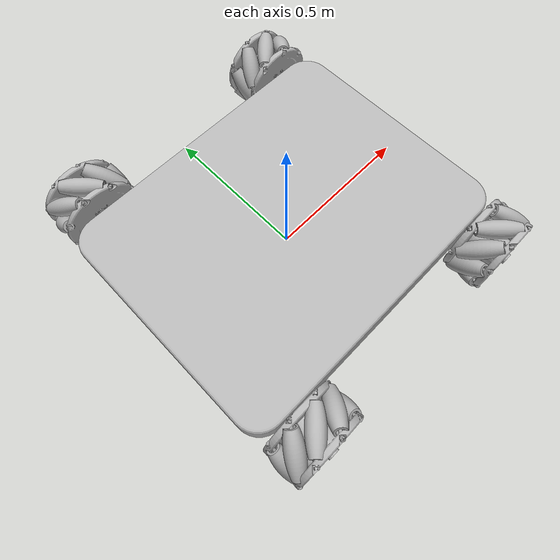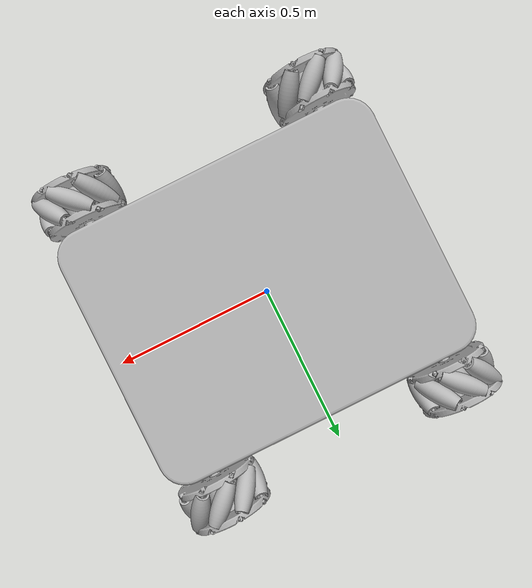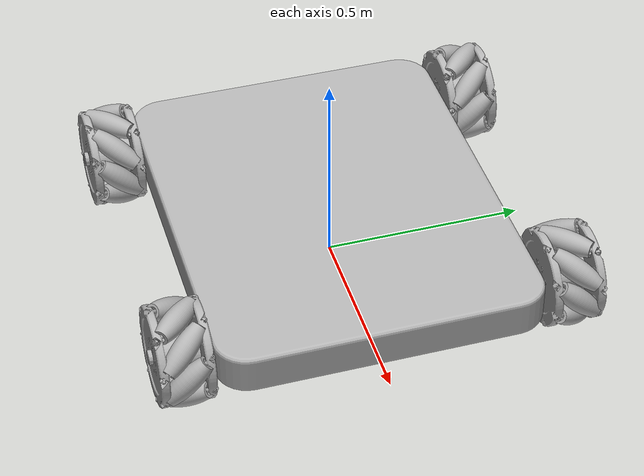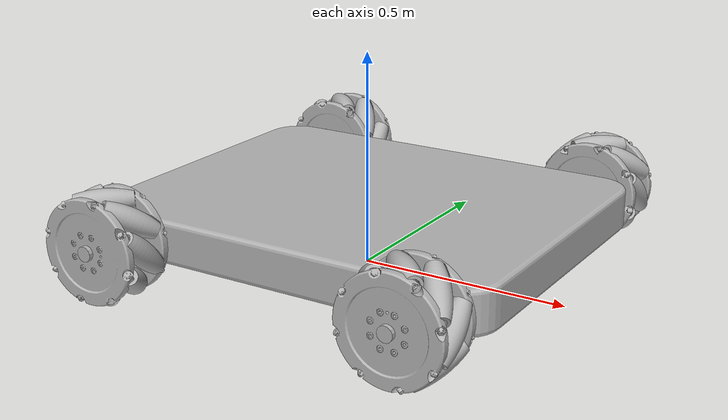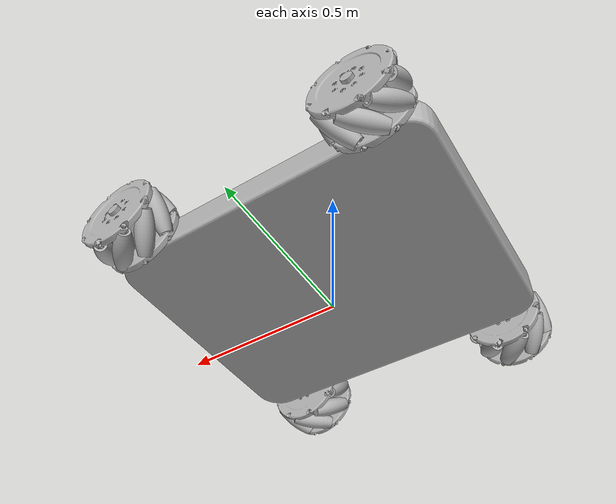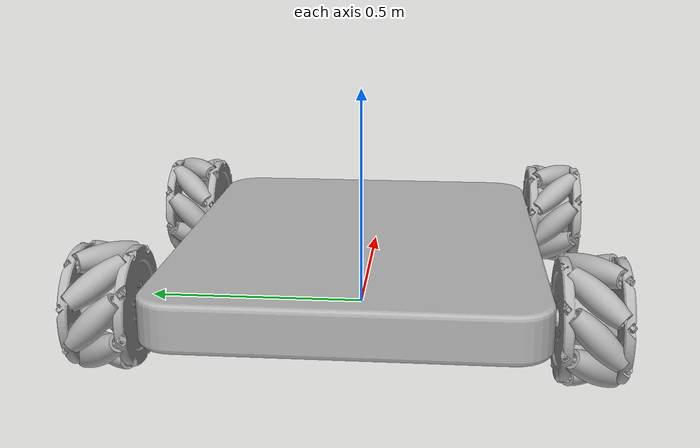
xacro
<?xml version="1.0" ?>
<robot name="mecanum_robot" xmlns:xacro="http://www.ros.org/wiki/xacro">

<xacro:include filename="$(find mecanum_robot_description)/urdf/materials.xacro" />
<xacro:include filename="$(find mecanum_robot_description)/urdf/mecanum_robot.trans" />
<xacro:include filename="$(find mecanum_robot_description)/urdf/mecanum_robot.gazebo" />
<link name="base_link">
  <inertial>
    <origin xyz="1.1663534961074897e-16 1.1663534961074897e-16 0.12" rpy="0 0 0"/>
    <mass value="626.8153038620243"/>
    <inertia ixx="34.21205" iyy="52.267949" izz="85.445173" ixy="0.0" iyz="0.0" ixz="0.0"/>
  </inertial>
  <visual>
    <origin xyz="0 0 0" rpy="0 0 0"/>
    <geometry>
      <mesh filename="file://$(find mecanum_robot_description)/meshes/base_link.stl" scale="0.001 0.001 0.001"/>
    </geometry>
    <material name="silver"/>
  </visual>
  <collision>
    <origin xyz="0 0 0" rpy="0 0 0"/>
    <geometry>
      <mesh filename="file://$(find mecanum_robot_description)/meshes/base_link.stl" scale="0.001 0.001 0.001"/>
    </geometry>
  </collision>
</link>

<link name="rr_wheel_body_1">
  <inertial>
    <origin xyz="1.1312574815625087e-05 0.0001733408960148397 2.351323560800811e-06" rpy="0 0 0"/>
    <mass value="15.884472667137045"/>
    <inertia ixx="0.080049" iyy="0.090199" izz="0.079944" ixy="4e-06" iyz="2e-06" ixz="-4e-06"/>
  </inertial>
  <visual>
    <origin xyz="0.373 0.471 -0.12" rpy="0 0 0"/>
    <geometry>
      <mesh filename="file://$(find mecanum_robot_description)/meshes/rr_wheel_body_1.stl" scale="0.001 0.001 0.001"/>
    </geometry>
    <material name="silver"/>
  </visual>
  <collision>
    <origin xyz="0.373 0.471 -0.12" rpy="0 0 0"/>
    <geometry>
      <mesh filename="file://$(find mecanum_robot_description)/meshes/rr_wheel_body_1.stl" scale="0.001 0.001 0.001"/>
    </geometry>
  </collision>
</link>

<link name="fr_wheel_body_1">
  <inertial>
    <origin xyz="2.3519307399966216e-06 0.00017333973584671147 1.1313181994626609e-05" rpy="0 0 0"/>
    <mass value="15.884472667137013"/>
    <inertia ixx="0.079944" iyy="0.090199" izz="0.080049" ixy="2e-06" iyz="4e-06" ixz="-4e-06"/>
  </inertial>
  <visual>
    <origin xyz="-0.373 0.471 -0.12" rpy="0 0 0"/>
    <geometry>
      <mesh filename="file://$(find mecanum_robot_description)/meshes/fr_wheel_body_1.stl" scale="0.001 0.001 0.001"/>
    </geometry>
    <material name="silver"/>
  </visual>
  <collision>
    <origin xyz="-0.373 0.471 -0.12" rpy="0 0 0"/>
    <geometry>
      <mesh filename="file://$(find mecanum_robot_description)/meshes/fr_wheel_body_1.stl" scale="0.001 0.001 0.001"/>
    </geometry>
  </collision>
</link>

<link name="fl_wheel_body_1">
  <inertial>
    <origin xyz="1.1313493589404366e-05 -0.00017333973584715556 -2.3513235607730554e-06" rpy="0 0 0"/>
    <mass value="15.884472667137045"/>
    <inertia ixx="0.080049" iyy="0.090199" izz="0.079944" ixy="-4e-06" iyz="2e-06" ixz="4e-06"/>
  </inertial>
  <visual>
    <origin xyz="-0.373 -0.471 -0.12" rpy="0 0 0"/>
    <geometry>
      <mesh filename="file://$(find mecanum_robot_description)/meshes/fl_wheel_body_1.stl" scale="0.001 0.001 0.001"/>
    </geometry>
    <material name="silver"/>
  </visual>
  <collision>
    <origin xyz="-0.373 -0.471 -0.12" rpy="0 0 0"/>
    <geometry>
      <mesh filename="file://$(find mecanum_robot_description)/meshes/fl_wheel_body_1.stl" scale="0.001 0.001 0.001"/>
    </geometry>
  </collision>
</link>

<link name="bl_wheel_body_1">
  <inertial>
    <origin xyz="2.3510119655512085e-06 0.00017334089601545033 1.1313181994640487e-05" rpy="0 0 0"/>
    <mass value="5.484554299514419"/>
    <inertia ixx="0.027603" iyy="0.031144" izz="0.027639" ixy="1e-06" iyz="1e-06" ixz="-1e-06"/>
  </inertial>
  <visual>
    <origin xyz="0.373 -0.471 -0.12" rpy="0 0 0"/>
    <geometry>
      <mesh filename="file://$(find mecanum_robot_description)/meshes/bl_wheel_body_1.stl" scale="0.001 0.001 0.001"/>
    </geometry>
    <material name="silver"/>
  </visual>
  <collision>
    <origin xyz="0.373 -0.471 -0.12" rpy="0 0 0"/>
    <geometry>
      <mesh filename="file://$(find mecanum_robot_description)/meshes/bl_wheel_body_1.stl" scale="0.001 0.001 0.001"/>
    </geometry>
  </collision>
</link>

<link name="roller_2">
  <inertial>
    <origin xyz="-4.2866253802120724e-07 -2.0539125955565396e-15 -4.2866253369133744e-07" rpy="0 0 0"/>
    <mass value="0.20683112740471188"/>
    <inertia ixx="0.000203" iyy="0.000161" izz="0.000203" ixy="6e-05" iyz="-6e-05" ixz="4.2e-05"/>
  </inertial>
  <visual>
    <origin xyz="-0.443004 0.471 -0.190004" rpy="0 0 0"/>
    <geometry>
      <mesh filename="file://$(find mecanum_robot_description)/meshes/roller_2.stl" scale="0.001 0.001 0.001"/>
    </geometry>
    <material name="silver"/>
  </visual>
  <collision>
    <origin xyz="-0.443004 0.471 -0.190004" rpy="0 0 0"/>
    <geometry>
      <mesh filename="file://$(find mecanum_robot_description)/meshes/roller_2.stl" scale="0.001 0.001 0.001"/>
    </geometry>
  </collision>
</link>

<link name="roller_1">
  <inertial>
    <origin xyz="-1.572875303335053e-07 1.5728752089660958e-07 -8.326672684688674e-17" rpy="0 0 0"/>
    <mass value="0.20683112740471188"/>
    <inertia ixx="0.000161" iyy="0.000161" izz="0.000245" ixy="8.4e-05" iyz="0.0" ixz="-0.0"/>
  </inertial>
  <visual>
    <origin xyz="-0.373283 0.471283 -0.219" rpy="0 0 0"/>
    <geometry>
      <mesh filename="file://$(find mecanum_robot_description)/meshes/roller_1.stl" scale="0.001 0.001 0.001"/>
    </geometry>
    <material name="silver"/>
  </visual>
  <collision>
    <origin xyz="-0.373283 0.471283 -0.219" rpy="0 0 0"/>
    <geometry>
      <mesh filename="file://$(find mecanum_robot_description)/meshes/roller_1.stl" scale="0.001 0.001 0.001"/>
    </geometry>
  </collision>
</link>

<link name="roller_8">
  <inertial>
    <origin xyz="4.28662526918977e-07 -4.107825191113079e-15 -4.286625290561563e-07" rpy="0 0 0"/>
    <mass value="0.20683112740471188"/>
    <inertia ixx="0.000203" iyy="0.000161" izz="0.000203" ixy="6e-05" iyz="6e-05" ixz="-4.2e-05"/>
  </inertial>
  <visual>
    <origin xyz="-0.302996 0.471 -0.190004" rpy="0 0 0"/>
    <geometry>
      <mesh filename="file://$(find mecanum_robot_description)/meshes/roller_8.stl" scale="0.001 0.001 0.001"/>
    </geometry>
    <material name="silver"/>
  </visual>
  <collision>
    <origin xyz="-0.302996 0.471 -0.190004" rpy="0 0 0"/>
    <geometry>
      <mesh filename="file://$(find mecanum_robot_description)/meshes/roller_8.stl" scale="0.001 0.001 0.001"/>
    </geometry>
  </collision>
</link>

<link name="roller_7">
  <inertial>
    <origin xyz="6.38378239159465e-15 -3.1086244689504383e-15 2.914335439641036e-15" rpy="0 0 0"/>
    <mass value="0.20683112740471188"/>
    <inertia ixx="0.000245" iyy="0.000161" izz="0.000161" ixy="0.0" iyz="8.4e-05" ixz="-0.0"/>
  </inertial>
  <visual>
    <origin xyz="-0.274 0.471 -0.12" rpy="0 0 0"/>
    <geometry>
      <mesh filename="file://$(find mecanum_robot_description)/meshes/roller_7.stl" scale="0.001 0.001 0.001"/>
    </geometry>
    <material name="silver"/>
  </visual>
  <collision>
    <origin xyz="-0.274 0.471 -0.12" rpy="0 0 0"/>
    <geometry>
      <mesh filename="file://$(find mecanum_robot_description)/meshes/roller_7.stl" scale="0.001 0.001 0.001"/>
    </geometry>
  </collision>
</link>

<link name="roller_6">
  <inertial>
    <origin xyz="4.286625237548414e-07 1.1657341758564144e-15 4.2866253131823573e-07" rpy="0 0 0"/>
    <mass value="0.20683112740471188"/>
    <inertia ixx="0.000203" iyy="0.000161" izz="0.000203" ixy="-6e-05" iyz="6e-05" ixz="4.2e-05"/>
  </inertial>
  <visual>
    <origin xyz="-0.302996 0.471 -0.049996" rpy="0 0 0"/>
    <geometry>
      <mesh filename="file://$(find mecanum_robot_description)/meshes/roller_6.stl" scale="0.001 0.001 0.001"/>
    </geometry>
    <material name="silver"/>
  </visual>
  <collision>
    <origin xyz="-0.302996 0.471 -0.049996" rpy="0 0 0"/>
    <geometry>
      <mesh filename="file://$(find mecanum_robot_description)/meshes/roller_6.stl" scale="0.001 0.001 0.001"/>
    </geometry>
  </collision>
</link>

<link name="roller_5">
  <inertial>
    <origin xyz="-6.2727600891321345e-15 4.274358644806853e-15 -2.0122792321330962e-16" rpy="0 0 0"/>
    <mass value="0.20683112740471188"/>
    <inertia ixx="0.000161" iyy="0.000161" izz="0.000245" ixy="-8.4e-05" iyz="-0.0" ixz="0.0"/>
  </inertial>
  <visual>
    <origin xyz="-0.373 0.471 -0.021" rpy="0 0 0"/>
    <geometry>
      <mesh filename="file://$(find mecanum_robot_description)/meshes/roller_5.stl" scale="0.001 0.001 0.001"/>
    </geometry>
    <material name="silver"/>
  </visual>
  <collision>
    <origin xyz="-0.373 0.471 -0.021" rpy="0 0 0"/>
    <geometry>
      <mesh filename="file://$(find mecanum_robot_description)/meshes/roller_5.stl" scale="0.001 0.001 0.001"/>
    </geometry>
  </collision>
</link>

<link name="roller_4">
  <inertial>
    <origin xyz="-4.2866253802120724e-07 3.7192471324942744e-15 4.2866253346235395e-07" rpy="0 0 0"/>
    <mass value="0.20683112740471188"/>
    <inertia ixx="0.000203" iyy="0.000161" izz="0.000203" ixy="-6e-05" iyz="-6e-05" ixz="-4.2e-05"/>
  </inertial>
  <visual>
    <origin xyz="-0.443004 0.471 -0.049996" rpy="0 0 0"/>
    <geometry>
      <mesh filename="file://$(find mecanum_robot_description)/meshes/roller_4.stl" scale="0.001 0.001 0.001"/>
    </geometry>
    <material name="silver"/>
  </visual>
  <collision>
    <origin xyz="-0.443004 0.471 -0.049996" rpy="0 0 0"/>
    <geometry>
      <mesh filename="file://$(find mecanum_robot_description)/meshes/roller_4.stl" scale="0.001 0.001 0.001"/>
    </geometry>
  </collision>
</link>

<link name="roller_3">
  <inertial>
    <origin xyz="6.439293542825908e-15 3.3306690738754696e-16 -2.7755575615628914e-16" rpy="0 0 0"/>
    <mass value="0.20683112740471188"/>
    <inertia ixx="0.000245" iyy="0.000161" izz="0.000161" ixy="0.0" iyz="-8.4e-05" ixz="-0.0"/>
  </inertial>
  <visual>
    <origin xyz="-0.472 0.471 -0.12" rpy="0 0 0"/>
    <geometry>
      <mesh filename="file://$(find mecanum_robot_description)/meshes/roller_3.stl" scale="0.001 0.001 0.001"/>
    </geometry>
    <material name="silver"/>
  </visual>
  <collision>
    <origin xyz="-0.472 0.471 -0.12" rpy="0 0 0"/>
    <geometry>
      <mesh filename="file://$(find mecanum_robot_description)/meshes/roller_3.stl" scale="0.001 0.001 0.001"/>
    </geometry>
  </collision>
</link>

<link name="roller_30">
  <inertial>
    <origin xyz="-4.2866253685547306e-07 4.107825191113079e-15 -4.2866253516238295e-07" rpy="0 0 0"/>
    <mass value="0.20683112740471188"/>
    <inertia ixx="0.000203" iyy="0.000161" izz="0.000203" ixy="-6e-05" iyz="6e-05" ixz="4.2e-05"/>
  </inertial>
  <visual>
    <origin xyz="-0.443004 -0.471 -0.190004" rpy="0 0 0"/>
    <geometry>
      <mesh filename="file://$(find mecanum_robot_description)/meshes/roller_30.stl" scale="0.001 0.001 0.001"/>
    </geometry>
    <material name="silver"/>
  </visual>
  <collision>
    <origin xyz="-0.443004 -0.471 -0.190004" rpy="0 0 0"/>
    <geometry>
      <mesh filename="file://$(find mecanum_robot_description)/meshes/roller_30.stl" scale="0.001 0.001 0.001"/>
    </geometry>
  </collision>
</link>

<link name="roller_29">
  <inertial>
    <origin xyz="7.105427357601002e-15 -1.5728752583710204e-07 1.572875249766792e-07" rpy="0 0 0"/>
    <mass value="0.20683112740471188"/>
    <inertia ixx="0.000245" iyy="0.000161" izz="0.000161" ixy="-0.0" iyz="8.4e-05" ixz="0.0"/>
  </inertial>
  <visual>
    <origin xyz="-0.472 -0.471283 -0.119717" rpy="0 0 0"/>
    <geometry>
      <mesh filename="file://$(find mecanum_robot_description)/meshes/roller_29.stl" scale="0.001 0.001 0.001"/>
    </geometry>
    <material name="silver"/>
  </visual>
  <collision>
    <origin xyz="-0.472 -0.471283 -0.119717" rpy="0 0 0"/>
    <geometry>
      <mesh filename="file://$(find mecanum_robot_description)/meshes/roller_29.stl" scale="0.001 0.001 0.001"/>
    </geometry>
  </collision>
</link>

<link name="roller_31">
  <inertial>
    <origin xyz="-4.496403249731884e-15 6.217248937900877e-15 1.942890293094024e-16" rpy="0 0 0"/>
    <mass value="0.20683112740471188"/>
    <inertia ixx="0.000161" iyy="0.000161" izz="0.000245" ixy="-8.4e-05" iyz="-0.0" ixz="0.0"/>
  </inertial>
  <visual>
    <origin xyz="-0.373 -0.471 -0.219" rpy="0 0 0"/>
    <geometry>
      <mesh filename="file://$(find mecanum_robot_description)/meshes/roller_31.stl" scale="0.001 0.001 0.001"/>
    </geometry>
    <material name="silver"/>
  </visual>
  <collision>
    <origin xyz="-0.373 -0.471 -0.219" rpy="0 0 0"/>
    <geometry>
      <mesh filename="file://$(find mecanum_robot_description)/meshes/roller_31.stl" scale="0.001 0.001 0.001"/>
    </geometry>
  </collision>
</link>

<link name="roller_28">
  <inertial>
    <origin xyz="-4.28662539408986e-07 -1.4432899320127035e-15 4.286625323937643e-07" rpy="0 0 0"/>
    <mass value="0.20683112740471188"/>
    <inertia ixx="0.000203" iyy="0.000161" izz="0.000203" ixy="6e-05" iyz="6e-05" ixz="-4.2e-05"/>
  </inertial>
  <visual>
    <origin xyz="-0.443004 -0.471 -0.049996" rpy="0 0 0"/>
    <geometry>
      <mesh filename="file://$(find mecanum_robot_description)/meshes/roller_28.stl" scale="0.001 0.001 0.001"/>
    </geometry>
    <material name="silver"/>
  </visual>
  <collision>
    <origin xyz="-0.443004 -0.471 -0.049996" rpy="0 0 0"/>
    <geometry>
      <mesh filename="file://$(find mecanum_robot_description)/meshes/roller_28.stl" scale="0.001 0.001 0.001"/>
    </geometry>
  </collision>
</link>

<link name="roller_27">
  <inertial>
    <origin xyz="-6.716849298982197e-15 -3.164135620181696e-15 -3.434752482434078e-16" rpy="0 0 0"/>
    <mass value="0.20683112740471188"/>
    <inertia ixx="0.000161" iyy="0.000161" izz="0.000245" ixy="8.4e-05" iyz="0.0" ixz="0.0"/>
  </inertial>
  <visual>
    <origin xyz="-0.373 -0.471 -0.021" rpy="0 0 0"/>
    <geometry>
      <mesh filename="file://$(find mecanum_robot_description)/meshes/roller_27.stl" scale="0.001 0.001 0.001"/>
    </geometry>
    <material name="silver"/>
  </visual>
  <collision>
    <origin xyz="-0.373 -0.471 -0.021" rpy="0 0 0"/>
    <geometry>
      <mesh filename="file://$(find mecanum_robot_description)/meshes/roller_27.stl" scale="0.001 0.001 0.001"/>
    </geometry>
  </collision>
</link>

<link name="roller_26">
  <inertial>
    <origin xyz="4.286625241989306e-07 -1.609823385706477e-15 4.286625311170078e-07" rpy="0 0 0"/>
    <mass value="0.20683112740471188"/>
    <inertia ixx="0.000203" iyy="0.000161" izz="0.000203" ixy="6e-05" iyz="-6e-05" ixz="4.2e-05"/>
  </inertial>
  <visual>
    <origin xyz="-0.302996 -0.471 -0.049996" rpy="0 0 0"/>
    <geometry>
      <mesh filename="file://$(find mecanum_robot_description)/meshes/roller_26.stl" scale="0.001 0.001 0.001"/>
    </geometry>
    <material name="silver"/>
  </visual>
  <collision>
    <origin xyz="-0.302996 -0.471 -0.049996" rpy="0 0 0"/>
    <geometry>
      <mesh filename="file://$(find mecanum_robot_description)/meshes/roller_26.stl" scale="0.001 0.001 0.001"/>
    </geometry>
  </collision>
</link>

<link name="roller_25">
  <inertial>
    <origin xyz="6.827871601444713e-15 6.661338147750939e-16 1.2073675392798577e-15" rpy="0 0 0"/>
    <mass value="0.20683112740471188"/>
    <inertia ixx="0.000245" iyy="0.000161" izz="0.000161" ixy="-0.0" iyz="-8.4e-05" ixz="-0.0"/>
  </inertial>
  <visual>
    <origin xyz="-0.274 -0.471 -0.12" rpy="0 0 0"/>
    <geometry>
      <mesh filename="file://$(find mecanum_robot_description)/meshes/roller_25.stl" scale="0.001 0.001 0.001"/>
    </geometry>
    <material name="silver"/>
  </visual>
  <collision>
    <origin xyz="-0.274 -0.471 -0.12" rpy="0 0 0"/>
    <geometry>
      <mesh filename="file://$(find mecanum_robot_description)/meshes/roller_25.stl" scale="0.001 0.001 0.001"/>
    </geometry>
  </collision>
</link>

<link name="roller_32">
  <inertial>
    <origin xyz="4.286625271410216e-07 4.107825191113079e-15 -4.286625283900225e-07" rpy="0 0 0"/>
    <mass value="0.20683112740471188"/>
    <inertia ixx="0.000203" iyy="0.000161" izz="0.000203" ixy="-6e-05" iyz="-6e-05" ixz="-4.2e-05"/>
  </inertial>
  <visual>
    <origin xyz="-0.302996 -0.471 -0.190004" rpy="0 0 0"/>
    <geometry>
      <mesh filename="file://$(find mecanum_robot_description)/meshes/roller_32.stl" scale="0.001 0.001 0.001"/>
    </geometry>
    <material name="silver"/>
  </visual>
  <collision>
    <origin xyz="-0.302996 -0.471 -0.190004" rpy="0 0 0"/>
    <geometry>
      <mesh filename="file://$(find mecanum_robot_description)/meshes/roller_32.stl" scale="0.001 0.001 0.001"/>
    </geometry>
  </collision>
</link>

<link name="roller_22">
  <inertial>
    <origin xyz="6.716849298982197e-15 -2.7755575615628914e-15 2.733924198139448e-15" rpy="0 0 0"/>
    <mass value="0.20683112740471188"/>
    <inertia ixx="0.000245" iyy="0.000161" izz="0.000161" ixy="-0.0" iyz="8.4e-05" ixz="0.0"/>
  </inertial>
  <visual>
    <origin xyz="0.472 -0.471 -0.12" rpy="0 0 0"/>
    <geometry>
      <mesh filename="file://$(find mecanum_robot_description)/meshes/roller_22.stl" scale="0.001 0.001 0.001"/>
    </geometry>
    <material name="silver"/>
  </visual>
  <collision>
    <origin xyz="0.472 -0.471 -0.12" rpy="0 0 0"/>
    <geometry>
      <mesh filename="file://$(find mecanum_robot_description)/meshes/roller_22.stl" scale="0.001 0.001 0.001"/>
    </geometry>
  </collision>
</link>

<link name="roller_23">
  <inertial>
    <origin xyz="4.2866252686346584e-07 -4.274358644806853e-15 -4.2866252900064516e-07" rpy="0 0 0"/>
    <mass value="0.20683112740471188"/>
    <inertia ixx="0.000203" iyy="0.000161" izz="0.000203" ixy="6e-05" iyz="6e-05" ixz="-4.2e-05"/>
  </inertial>
  <visual>
    <origin xyz="0.443004 -0.471 -0.190004" rpy="0 0 0"/>
    <geometry>
      <mesh filename="file://$(find mecanum_robot_description)/meshes/roller_23.stl" scale="0.001 0.001 0.001"/>
    </geometry>
    <material name="silver"/>
  </visual>
  <collision>
    <origin xyz="0.443004 -0.471 -0.190004" rpy="0 0 0"/>
    <geometry>
      <mesh filename="file://$(find mecanum_robot_description)/meshes/roller_23.stl" scale="0.001 0.001 0.001"/>
    </geometry>
  </collision>
</link>

<link name="roller_24">
  <inertial>
    <origin xyz="-1.5728752977839378e-07 1.5728752061905382e-07 8.326672684688674e-17" rpy="0 0 0"/>
    <mass value="0.20683112740471188"/>
    <inertia ixx="0.000161" iyy="0.000161" izz="0.000245" ixy="8.4e-05" iyz="0.0" ixz="0.0"/>
  </inertial>
  <visual>
    <origin xyz="0.372717 -0.470717 -0.219" rpy="0 0 0"/>
    <geometry>
      <mesh filename="file://$(find mecanum_robot_description)/meshes/roller_24.stl" scale="0.001 0.001 0.001"/>
    </geometry>
    <material name="silver"/>
  </visual>
  <collision>
    <origin xyz="0.372717 -0.470717 -0.219" rpy="0 0 0"/>
    <geometry>
      <mesh filename="file://$(find mecanum_robot_description)/meshes/roller_24.stl" scale="0.001 0.001 0.001"/>
    </geometry>
  </collision>
</link>

<link name="roller_17">
  <inertial>
    <origin xyz="-4.2866253802120724e-07 -1.8318679906315083e-15 -4.2866253369133744e-07" rpy="0 0 0"/>
    <mass value="0.20683112740471188"/>
    <inertia ixx="0.000203" iyy="0.000161" izz="0.000203" ixy="6e-05" iyz="-6e-05" ixz="4.2e-05"/>
  </inertial>
  <visual>
    <origin xyz="0.302996 -0.471 -0.190004" rpy="0 0 0"/>
    <geometry>
      <mesh filename="file://$(find mecanum_robot_description)/meshes/roller_17.stl" scale="0.001 0.001 0.001"/>
    </geometry>
    <material name="silver"/>
  </visual>
  <collision>
    <origin xyz="0.302996 -0.471 -0.190004" rpy="0 0 0"/>
    <geometry>
      <mesh filename="file://$(find mecanum_robot_description)/meshes/roller_17.stl" scale="0.001 0.001 0.001"/>
    </geometry>
  </collision>
</link>

<link name="roller_18">
  <inertial>
    <origin xyz="7.049916206369744e-15 1.6653345369377348e-16 -7.077671781985373e-16" rpy="0 0 0"/>
    <mass value="0.20683112740471188"/>
    <inertia ixx="0.000245" iyy="0.000161" izz="0.000161" ixy="-0.0" iyz="-8.4e-05" ixz="-0.0"/>
  </inertial>
  <visual>
    <origin xyz="0.274 -0.471 -0.12" rpy="0 0 0"/>
    <geometry>
      <mesh filename="file://$(find mecanum_robot_description)/meshes/roller_18.stl" scale="0.001 0.001 0.001"/>
    </geometry>
    <material name="silver"/>
  </visual>
  <collision>
    <origin xyz="0.274 -0.471 -0.12" rpy="0 0 0"/>
    <geometry>
      <mesh filename="file://$(find mecanum_robot_description)/meshes/roller_18.stl" scale="0.001 0.001 0.001"/>
    </geometry>
  </collision>
</link>

<link name="roller_19">
  <inertial>
    <origin xyz="-4.286625378546738e-07 3.3306690738754696e-15 4.286625332750038e-07" rpy="0 0 0"/>
    <mass value="0.20683112740471188"/>
    <inertia ixx="0.000203" iyy="0.000161" izz="0.000203" ixy="-6e-05" iyz="-6e-05" ixz="-4.2e-05"/>
  </inertial>
  <visual>
    <origin xyz="0.302996 -0.471 -0.049996" rpy="0 0 0"/>
    <geometry>
      <mesh filename="file://$(find mecanum_robot_description)/meshes/roller_19.stl" scale="0.001 0.001 0.001"/>
    </geometry>
    <material name="silver"/>
  </visual>
  <collision>
    <origin xyz="0.302996 -0.471 -0.049996" rpy="0 0 0"/>
    <geometry>
      <mesh filename="file://$(find mecanum_robot_description)/meshes/roller_19.stl" scale="0.001 0.001 0.001"/>
    </geometry>
  </collision>
</link>

<link name="roller_20">
  <inertial>
    <origin xyz="-5.88418203051333e-15 4.385380947269368e-15 -4.85722573273506e-16" rpy="0 0 0"/>
    <mass value="0.20683112740471188"/>
    <inertia ixx="0.000161" iyy="0.000161" izz="0.000245" ixy="-8.4e-05" iyz="-0.0" ixz="0.0"/>
  </inertial>
  <visual>
    <origin xyz="0.373 -0.471 -0.021" rpy="0 0 0"/>
    <geometry>
      <mesh filename="file://$(find mecanum_robot_description)/meshes/roller_20.stl" scale="0.001 0.001 0.001"/>
    </geometry>
    <material name="silver"/>
  </visual>
  <collision>
    <origin xyz="0.373 -0.471 -0.021" rpy="0 0 0"/>
    <geometry>
      <mesh filename="file://$(find mecanum_robot_description)/meshes/roller_20.stl" scale="0.001 0.001 0.001"/>
    </geometry>
  </collision>
</link>

<link name="roller_21">
  <inertial>
    <origin xyz="4.286625241989306e-07 1.1657341758564144e-15 4.286625314708914e-07" rpy="0 0 0"/>
    <mass value="0.20683112740471188"/>
    <inertia ixx="0.000203" iyy="0.000161" izz="0.000203" ixy="-6e-05" iyz="6e-05" ixz="4.2e-05"/>
  </inertial>
  <visual>
    <origin xyz="0.443004 -0.471 -0.049996" rpy="0 0 0"/>
    <geometry>
      <mesh filename="file://$(find mecanum_robot_description)/meshes/roller_21.stl" scale="0.001 0.001 0.001"/>
    </geometry>
    <material name="silver"/>
  </visual>
  <collision>
    <origin xyz="0.443004 -0.471 -0.049996" rpy="0 0 0"/>
    <geometry>
      <mesh filename="file://$(find mecanum_robot_description)/meshes/roller_21.stl" scale="0.001 0.001 0.001"/>
    </geometry>
  </collision>
</link>

<link name="roller_11">
  <inertial>
    <origin xyz="7.049916206369744e-15 -1.1657341758564144e-15 -1.8457457784393227e-15" rpy="0 0 0"/>
    <mass value="0.20683112740471188"/>
    <inertia ixx="0.000245" iyy="0.000161" izz="0.000161" ixy="0.0" iyz="-8.4e-05" ixz="-0.0"/>
  </inertial>
  <visual>
    <origin xyz="0.472 0.471 -0.12" rpy="0 0 0"/>
    <geometry>
      <mesh filename="file://$(find mecanum_robot_description)/meshes/roller_11.stl" scale="0.001 0.001 0.001"/>
    </geometry>
    <material name="silver"/>
  </visual>
  <collision>
    <origin xyz="0.472 0.471 -0.12" rpy="0 0 0"/>
    <geometry>
      <mesh filename="file://$(find mecanum_robot_description)/meshes/roller_11.stl" scale="0.001 0.001 0.001"/>
    </geometry>
  </collision>
</link>

<link name="roller_12">
  <inertial>
    <origin xyz="4.2866252697448815e-07 -2.942091015256665e-15 4.286625285218615e-07" rpy="0 0 0"/>
    <mass value="0.20683112740471188"/>
    <inertia ixx="0.000203" iyy="0.000161" izz="0.000203" ixy="6e-05" iyz="-6e-05" ixz="4.2e-05"/>
  </inertial>
  <visual>
    <origin xyz="0.443004 0.471 -0.049996" rpy="0 0 0"/>
    <geometry>
      <mesh filename="file://$(find mecanum_robot_description)/meshes/roller_12.stl" scale="0.001 0.001 0.001"/>
    </geometry>
    <material name="silver"/>
  </visual>
  <collision>
    <origin xyz="0.443004 0.471 -0.049996" rpy="0 0 0"/>
    <geometry>
      <mesh filename="file://$(find mecanum_robot_description)/meshes/roller_12.stl" scale="0.001 0.001 0.001"/>
    </geometry>
  </collision>
</link>

<link name="roller_13">
  <inertial>
    <origin xyz="-4.385380947269368e-15 -5.2735593669694936e-15 -2.0122792321330962e-16" rpy="0 0 0"/>
    <mass value="0.20683112740471188"/>
    <inertia ixx="0.000161" iyy="0.000161" izz="0.000245" ixy="8.4e-05" iyz="0.0" ixz="-0.0"/>
  </inertial>
  <visual>
    <origin xyz="0.373 0.471 -0.021" rpy="0 0 0"/>
    <geometry>
      <mesh filename="file://$(find mecanum_robot_description)/meshes/roller_13.stl" scale="0.001 0.001 0.001"/>
    </geometry>
    <material name="silver"/>
  </visual>
  <collision>
    <origin xyz="0.373 0.471 -0.021" rpy="0 0 0"/>
    <geometry>
      <mesh filename="file://$(find mecanum_robot_description)/meshes/roller_13.stl" scale="0.001 0.001 0.001"/>
    </geometry>
  </collision>
</link>

<link name="roller_14">
  <inertial>
    <origin xyz="-4.286625372995623e-07 -3.219646771412954e-15 4.286625337399097e-07" rpy="0 0 0"/>
    <mass value="0.20683112740471188"/>
    <inertia ixx="0.000203" iyy="0.000161" izz="0.000203" ixy="6e-05" iyz="6e-05" ixz="-4.2e-05"/>
  </inertial>
  <visual>
    <origin xyz="0.302996 0.471 -0.049996" rpy="0 0 0"/>
    <geometry>
      <mesh filename="file://$(find mecanum_robot_description)/meshes/roller_14.stl" scale="0.001 0.001 0.001"/>
    </geometry>
    <material name="silver"/>
  </visual>
  <collision>
    <origin xyz="0.302996 0.471 -0.049996" rpy="0 0 0"/>
    <geometry>
      <mesh filename="file://$(find mecanum_robot_description)/meshes/roller_14.stl" scale="0.001 0.001 0.001"/>
    </geometry>
  </collision>
</link>

<link name="roller_10">
  <inertial>
    <origin xyz="4.2866252492057555e-07 2.6645352591003757e-15 -4.286625306937353e-07" rpy="0 0 0"/>
    <mass value="0.20683112740471188"/>
    <inertia ixx="0.000203" iyy="0.000161" izz="0.000203" ixy="-6e-05" iyz="-6e-05" ixz="-4.2e-05"/>
  </inertial>
  <visual>
    <origin xyz="0.443004 0.471 -0.190004" rpy="0 0 0"/>
    <geometry>
      <mesh filename="file://$(find mecanum_robot_description)/meshes/roller_10.stl" scale="0.001 0.001 0.001"/>
    </geometry>
    <material name="silver"/>
  </visual>
  <collision>
    <origin xyz="0.443004 0.471 -0.190004" rpy="0 0 0"/>
    <geometry>
      <mesh filename="file://$(find mecanum_robot_description)/meshes/roller_10.stl" scale="0.001 0.001 0.001"/>
    </geometry>
  </collision>
</link>

<link name="roller_9">
  <inertial>
    <origin xyz="-5.662137425588298e-15 4.274358644806853e-15 -4.718447854656915e-16" rpy="0 0 0"/>
    <mass value="0.20683112740471188"/>
    <inertia ixx="0.000161" iyy="0.000161" izz="0.000245" ixy="-8.4e-05" iyz="0.0" ixz="0.0"/>
  </inertial>
  <visual>
    <origin xyz="0.373 0.471 -0.219" rpy="0 0 0"/>
    <geometry>
      <mesh filename="file://$(find mecanum_robot_description)/meshes/roller_9.stl" scale="0.001 0.001 0.001"/>
    </geometry>
    <material name="silver"/>
  </visual>
  <collision>
    <origin xyz="0.373 0.471 -0.219" rpy="0 0 0"/>
    <geometry>
      <mesh filename="file://$(find mecanum_robot_description)/meshes/roller_9.stl" scale="0.001 0.001 0.001"/>
    </geometry>
  </collision>
</link>

<link name="roller_16">
  <inertial>
    <origin xyz="-4.2866253802120724e-07 2.3314683517128287e-15 -4.2866253346929284e-07" rpy="0 0 0"/>
    <mass value="0.20683112740471188"/>
    <inertia ixx="0.000203" iyy="0.000161" izz="0.000203" ixy="-6e-05" iyz="6e-05" ixz="4.2e-05"/>
  </inertial>
  <visual>
    <origin xyz="0.302996 0.471 -0.190004" rpy="0 0 0"/>
    <geometry>
      <mesh filename="file://$(find mecanum_robot_description)/meshes/roller_16.stl" scale="0.001 0.001 0.001"/>
    </geometry>
    <material name="silver"/>
  </visual>
  <collision>
    <origin xyz="0.302996 0.471 -0.190004" rpy="0 0 0"/>
    <geometry>
      <mesh filename="file://$(find mecanum_robot_description)/meshes/roller_16.stl" scale="0.001 0.001 0.001"/>
    </geometry>
  </collision>
</link>

<link name="roller_15">
  <inertial>
    <origin xyz="7.494005416219807e-15 1.5728752422727865e-07 -1.5728752443544547e-07" rpy="0 0 0"/>
    <mass value="0.20683112740471188"/>
    <inertia ixx="0.000245" iyy="0.000161" izz="0.000161" ixy="-0.0" iyz="8.4e-05" ixz="-0.0"/>
  </inertial>
  <visual>
    <origin xyz="0.274 0.471283 -0.120283" rpy="0 0 0"/>
    <geometry>
      <mesh filename="file://$(find mecanum_robot_description)/meshes/roller_15.stl" scale="0.001 0.001 0.001"/>
    </geometry>
    <material name="silver"/>
  </visual>
  <collision>
    <origin xyz="0.274 0.471283 -0.120283" rpy="0 0 0"/>
    <geometry>
      <mesh filename="file://$(find mecanum_robot_description)/meshes/roller_15.stl" scale="0.001 0.001 0.001"/>
    </geometry>
  </collision>
</link>

<joint name="Revolute 1" type="continuous">
  <origin xyz="-0.373 -0.471 0.12" rpy="0 0 0"/>
  <parent link="base_link"/>
  <child link="rr_wheel_body_1"/>
  <axis xyz="0.0 -1.0 0.0"/>
</joint>

<joint name="Revolute 2" type="continuous">
  <origin xyz="0.373 -0.471 0.12" rpy="0 0 0"/>
  <parent link="base_link"/>
  <child link="fr_wheel_body_1"/>
  <axis xyz="0.0 -1.0 0.0"/>
</joint>

<joint name="Revolute 3" type="continuous">
  <origin xyz="0.373 0.471 0.12" rpy="0 0 0"/>
  <parent link="base_link"/>
  <child link="fl_wheel_body_1"/>
  <axis xyz="0.0 -1.0 0.0"/>
</joint>

<joint name="Revolute 4" type="continuous">
  <origin xyz="-0.373 0.471 0.12" rpy="0 0 0"/>
  <parent link="base_link"/>
  <child link="bl_wheel_body_1"/>
  <axis xyz="0.0 -1.0 0.0"/>
</joint>

<joint name="Revolute 13" type="continuous">
  <origin xyz="0.070004 0.0 0.070004" rpy="0 0 0"/>
  <parent link="fr_wheel_body_1"/>
  <child link="roller_2"/>
  <axis xyz="0.5 -0.707107 -0.5"/>
</joint>

<joint name="Revolute 14" type="continuous">
  <origin xyz="0.000283 -0.000283 0.099" rpy="0 0 0"/>
  <parent link="fr_wheel_body_1"/>
  <child link="roller_1"/>
  <axis xyz="-0.707107 0.707107 0.0"/>
</joint>

<joint name="Revolute 15" type="continuous">
  <origin xyz="-0.070004 0.0 0.070004" rpy="0 0 0"/>
  <parent link="fr_wheel_body_1"/>
  <child link="roller_8"/>
  <axis xyz="0.5 -0.707107 0.5"/>
</joint>

<joint name="Revolute 16" type="continuous">
  <origin xyz="-0.099 0.0 0.0" rpy="0 0 0"/>
  <parent link="fr_wheel_body_1"/>
  <child link="roller_7"/>
  <axis xyz="-0.0 -0.707107 0.707107"/>
</joint>

<joint name="Revolute 17" type="continuous">
  <origin xyz="-0.070004 0.0 -0.070004" rpy="0 0 0"/>
  <parent link="fr_wheel_body_1"/>
  <child link="roller_6"/>
  <axis xyz="-0.5 -0.707107 0.5"/>
</joint>

<joint name="Revolute 18" type="continuous">
  <origin xyz="0.0 0.0 -0.099" rpy="0 0 0"/>
  <parent link="fr_wheel_body_1"/>
  <child link="roller_5"/>
  <axis xyz="-0.707107 -0.707107 0.0"/>
</joint>

<joint name="Revolute 19" type="continuous">
  <origin xyz="0.070004 0.0 -0.070004" rpy="0 0 0"/>
  <parent link="fr_wheel_body_1"/>
  <child link="roller_4"/>
  <axis xyz="-0.5 -0.707107 -0.5"/>
</joint>

<joint name="Revolute 20" type="continuous">
  <origin xyz="0.099 0.0 0.0" rpy="0 0 0"/>
  <parent link="fr_wheel_body_1"/>
  <child link="roller_3"/>
  <axis xyz="-0.0 -0.707107 -0.707107"/>
</joint>

<joint name="Revolute 21" type="continuous">
  <origin xyz="0.070004 0.0 0.070004" rpy="0 0 0"/>
  <parent link="fl_wheel_body_1"/>
  <child link="roller_30"/>
  <axis xyz="-0.5 -0.707107 0.5"/>
</joint>

<joint name="Revolute 22" type="continuous">
  <origin xyz="0.099 0.000283 -0.000283" rpy="0 0 0"/>
  <parent link="fl_wheel_body_1"/>
  <child link="roller_29"/>
  <axis xyz="-0.0 0.707107 -0.707107"/>
</joint>

<joint name="Revolute 23" type="continuous">
  <origin xyz="0.0 0.0 0.099" rpy="0 0 0"/>
  <parent link="fl_wheel_body_1"/>
  <child link="roller_31"/>
  <axis xyz="-0.707107 -0.707107 0.0"/>
</joint>

<joint name="Revolute 24" type="continuous">
  <origin xyz="0.070004 0.0 -0.070004" rpy="0 0 0"/>
  <parent link="fl_wheel_body_1"/>
  <child link="roller_28"/>
  <axis xyz="0.5 -0.707107 0.5"/>
</joint>

<joint name="Revolute 25" type="continuous">
  <origin xyz="0.0 0.0 -0.099" rpy="0 0 0"/>
  <parent link="fl_wheel_body_1"/>
  <child link="roller_27"/>
  <axis xyz="0.707107 -0.707107 -0.0"/>
</joint>

<joint name="Revolute 26" type="continuous">
  <origin xyz="-0.070004 0.0 -0.070004" rpy="0 0 0"/>
  <parent link="fl_wheel_body_1"/>
  <child link="roller_26"/>
  <axis xyz="0.5 -0.707107 -0.5"/>
</joint>

<joint name="Revolute 27" type="continuous">
  <origin xyz="-0.099 0.0 0.0" rpy="0 0 0"/>
  <parent link="fl_wheel_body_1"/>
  <child link="roller_25"/>
  <axis xyz="-0.0 -0.707107 -0.707107"/>
</joint>

<joint name="Revolute 28" type="continuous">
  <origin xyz="-0.070004 0.0 0.070004" rpy="0 0 0"/>
  <parent link="fl_wheel_body_1"/>
  <child link="roller_32"/>
  <axis xyz="-0.5 -0.707107 -0.5"/>
</joint>

<joint name="Revolute 29" type="continuous">
  <origin xyz="-0.099 0.0 0.0" rpy="0 0 0"/>
  <parent link="bl_wheel_body_1"/>
  <child link="roller_22"/>
  <axis xyz="0.0 -0.707107 0.707107"/>
</joint>

<joint name="Revolute 30" type="continuous">
  <origin xyz="-0.070004 0.0 0.070004" rpy="0 0 0"/>
  <parent link="bl_wheel_body_1"/>
  <child link="roller_23"/>
  <axis xyz="0.5 -0.707107 0.5"/>
</joint>

<joint name="Revolute 31" type="continuous">
  <origin xyz="0.000283 -0.000283 0.099" rpy="0 0 0"/>
  <parent link="bl_wheel_body_1"/>
  <child link="roller_24"/>
  <axis xyz="-0.707107 0.707107 0.0"/>
</joint>

<joint name="Revolute 32" type="continuous">
  <origin xyz="0.070004 0.0 0.070004" rpy="0 0 0"/>
  <parent link="bl_wheel_body_1"/>
  <child link="roller_17"/>
  <axis xyz="0.5 -0.707107 -0.5"/>
</joint>

<joint name="Revolute 33" type="continuous">
  <origin xyz="0.099 0.0 0.0" rpy="0 0 0"/>
  <parent link="bl_wheel_body_1"/>
  <child link="roller_18"/>
  <axis xyz="-0.0 -0.707107 -0.707107"/>
</joint>

<joint name="Revolute 34" type="continuous">
  <origin xyz="0.070004 0.0 -0.070004" rpy="0 0 0"/>
  <parent link="bl_wheel_body_1"/>
  <child link="roller_19"/>
  <axis xyz="-0.5 -0.707107 -0.5"/>
</joint>

<joint name="Revolute 35" type="continuous">
  <origin xyz="0.0 0.0 -0.099" rpy="0 0 0"/>
  <parent link="bl_wheel_body_1"/>
  <child link="roller_20"/>
  <axis xyz="-0.707107 -0.707107 0.0"/>
</joint>

<joint name="Revolute 36" type="continuous">
  <origin xyz="-0.070004 0.0 -0.070004" rpy="0 0 0"/>
  <parent link="bl_wheel_body_1"/>
  <child link="roller_21"/>
  <axis xyz="-0.5 -0.707107 0.5"/>
</joint>

<joint name="Revolute 37" type="continuous">
  <origin xyz="-0.099 0.0 0.0" rpy="0 0 0"/>
  <parent link="rr_wheel_body_1"/>
  <child link="roller_11"/>
  <axis xyz="-0.0 0.707107 0.707107"/>
</joint>

<joint name="Revolute 38" type="continuous">
  <origin xyz="-0.070004 0.0 -0.070004" rpy="0 0 0"/>
  <parent link="rr_wheel_body_1"/>
  <child link="roller_12"/>
  <axis xyz="-0.5 0.707107 0.5"/>
</joint>

<joint name="Revolute 39" type="continuous">
  <origin xyz="0.0 0.0 -0.099" rpy="0 0 0"/>
  <parent link="rr_wheel_body_1"/>
  <child link="roller_13"/>
  <axis xyz="-0.707107 0.707107 -0.0"/>
</joint>

<joint name="Revolute 40" type="continuous">
  <origin xyz="0.070004 0.0 -0.070004" rpy="0 0 0"/>
  <parent link="rr_wheel_body_1"/>
  <child link="roller_14"/>
  <axis xyz="-0.5 0.707107 -0.5"/>
</joint>

<joint name="Revolute 42" type="continuous">
  <origin xyz="-0.070004 0.0 0.070004" rpy="0 0 0"/>
  <parent link="rr_wheel_body_1"/>
  <child link="roller_10"/>
  <axis xyz="0.5 0.707107 0.5"/>
</joint>

<joint name="Revolute 44" type="continuous">
  <origin xyz="0.0 0.0 0.099" rpy="0 0 0"/>
  <parent link="rr_wheel_body_1"/>
  <child link="roller_9"/>
  <axis xyz="0.707107 0.707107 0.0"/>
</joint>

<joint name="Revolute 45" type="continuous">
  <origin xyz="0.070004 0.0 0.070004" rpy="0 0 0"/>
  <parent link="rr_wheel_body_1"/>
  <child link="roller_16"/>
  <axis xyz="0.5 0.707107 -0.5"/>
</joint>

<joint name="Revolute 46" type="continuous">
  <origin xyz="0.099 -0.000283 0.000283" rpy="0 0 0"/>
  <parent link="rr_wheel_body_1"/>
  <child link="roller_15"/>
  <axis xyz="-0.0 -0.707107 0.707107"/>
</joint>

</robot>

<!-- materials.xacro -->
<robot name="mecanum_robot" xmlns:xacro="http://www.ros.org/wiki/xacro" >

<material name="silver">
  <color rgba="0.700 0.700 0.700 1.000"/>
</material>

</robot>

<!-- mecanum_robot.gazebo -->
<robot name="mecanum_robot" xmlns:xacro="http://www.ros.org/wiki/xacro" >

<xacro:property name="body_color" value="Gazebo/Silver" />

<gazebo>
  <plugin name="control" filename="libgazebo_ros_control.so"/>
</gazebo>
<gazebo reference="base_link">
  <material>${body_color}</material>
  <mu1>0.2</mu1>
  <mu2>0.2</mu2>
  <self_collide>true</self_collide>
  <gravity>true</gravity>
</gazebo>

<gazebo reference="rr_wheel_body_1">
  <material>${body_color}</material>
  <mu1>0.2</mu1>
  <mu2>0.2</mu2>
  <self_collide>true</self_collide>
</gazebo>

<gazebo reference="fr_wheel_body_1">
  <material>${body_color}</material>
  <mu1>0.2</mu1>
  <mu2>0.2</mu2>
  <self_collide>true</self_collide>
</gazebo>

<gazebo reference="fl_wheel_body_1">
  <material>${body_color}</material>
  <mu1>0.2</mu1>
  <mu2>0.2</mu2>
  <self_collide>true</self_collide>
</gazebo>

<gazebo reference="bl_wheel_body_1">
  <material>${body_color}</material>
  <mu1>0.2</mu1>
  <mu2>0.2</mu2>
  <self_collide>true</self_collide>
</gazebo>

<gazebo reference="roller_2">
  <material>${body_color}</material>
  <mu1>0.2</mu1>
  <mu2>0.2</mu2>
  <self_collide>true</self_collide>
</gazebo>

<gazebo reference="roller_1">
  <material>${body_color}</material>
  <mu1>0.2</mu1>
  <mu2>0.2</mu2>
  <self_collide>true</self_collide>
</gazebo>

<gazebo reference="roller_8">
  <material>${body_color}</material>
  <mu1>0.2</mu1>
  <mu2>0.2</mu2>
  <self_collide>true</self_collide>
</gazebo>

<gazebo reference="roller_7">
  <material>${body_color}</material>
  <mu1>0.2</mu1>
  <mu2>0.2</mu2>
  <self_collide>true</self_collide>
</gazebo>

<gazebo reference="roller_6">
  <material>${body_color}</material>
  <mu1>0.2</mu1>
  <mu2>0.2</mu2>
  <self_collide>true</self_collide>
</gazebo>

<gazebo reference="roller_5">
  <material>${body_color}</material>
  <mu1>0.2</mu1>
  <mu2>0.2</mu2>
  <self_collide>true</self_collide>
</gazebo>

<gazebo reference="roller_4">
  <material>${body_color}</material>
  <mu1>0.2</mu1>
  <mu2>0.2</mu2>
  <self_collide>true</self_collide>
</gazebo>

<gazebo reference="roller_3">
  <material>${body_color}</material>
  <mu1>0.2</mu1>
  <mu2>0.2</mu2>
  <self_collide>true</self_collide>
</gazebo>

<gazebo reference="roller_30">
  <material>${body_color}</material>
  <mu1>0.2</mu1>
  <mu2>0.2</mu2>
  <self_collide>true</self_collide>
</gazebo>

<gazebo reference="roller_29">
  <material>${body_color}</material>
  <mu1>0.2</mu1>
  <mu2>0.2</mu2>
  <self_collide>true</self_collide>
</gazebo>

<gazebo reference="roller_31">
  <material>${body_color}</material>
  <mu1>0.2</mu1>
  <mu2>0.2</mu2>
  <self_collide>true</self_collide>
</gazebo>

<gazebo reference="roller_28">
  <material>${body_color}</material>
  <mu1>0.2</mu1>
  <mu2>0.2</mu2>
  <self_collide>true</self_collide>
</gazebo>

<gazebo reference="roller_27">
  <material>${body_color}</material>
  <mu1>0.2</mu1>
  <mu2>0.2</mu2>
  <self_collide>true</self_collide>
</gazebo>

<gazebo reference="roller_26">
  <material>${body_color}</material>
  <mu1>0.2</mu1>
  <mu2>0.2</mu2>
  <self_collide>true</self_collide>
</gazebo>

<gazebo reference="roller_25">
  <material>${body_color}</material>
  <mu1>0.2</mu1>
  <mu2>0.2</mu2>
  <self_collide>true</self_collide>
</gazebo>

<gazebo reference="roller_32">
  <material>${body_color}</material>
  <mu1>0.2</mu1>
  <mu2>0.2</mu2>
  <self_collide>true</self_collide>
</gazebo>

<gazebo reference="roller_22">
  <material>${body_color}</material>
  <mu1>0.2</mu1>
  <mu2>0.2</mu2>
  <self_collide>true</self_collide>
</gazebo>

<gazebo reference="roller_23">
  <material>${body_color}</material>
  <mu1>0.2</mu1>
  <mu2>0.2</mu2>
  <self_collide>true</self_collide>
</gazebo>

<gazebo reference="roller_24">
  <material>${body_color}</material>
  <mu1>0.2</mu1>
  <mu2>0.2</mu2>
  <self_collide>true</self_collide>
</gazebo>

<gazebo reference="roller_17">
  <material>${body_color}</material>
  <mu1>0.2</mu1>
  <mu2>0.2</mu2>
  <self_collide>true</self_collide>
</gazebo>

<gazebo reference="roller_18">
  <material>${body_color}</material>
  <mu1>0.2</mu1>
  <mu2>0.2</mu2>
  <self_collide>true</self_collide>
</gazebo>

<gazebo reference="roller_19">
  <material>${body_color}</material>
  <mu1>0.2</mu1>
  <mu2>0.2</mu2>
  <self_collide>true</self_collide>
</gazebo>

<gazebo reference="roller_20">
  <material>${body_color}</material>
  <mu1>0.2</mu1>
  <mu2>0.2</mu2>
  <self_collide>true</self_collide>
</gazebo>

<gazebo reference="roller_21">
  <material>${body_color}</material>
  <mu1>0.2</mu1>
  <mu2>0.2</mu2>
  <self_collide>true</self_collide>
</gazebo>

<gazebo reference="roller_11">
  <material>${body_color}</material>
  <mu1>0.2</mu1>
  <mu2>0.2</mu2>
  <self_collide>true</self_collide>
</gazebo>

<gazebo reference="roller_12">
  <material>${body_color}</material>
  <mu1>0.2</mu1>
  <mu2>0.2</mu2>
  <self_collide>true</self_collide>
</gazebo>

<gazebo reference="roller_13">
  <material>${body_color}</material>
  <mu1>0.2</mu1>
  <mu2>0.2</mu2>
  <self_collide>true</self_collide>
</gazebo>

<gazebo reference="roller_14">
  <material>${body_color}</material>
  <mu1>0.2</mu1>
  <mu2>0.2</mu2>
  <self_collide>true</self_collide>
</gazebo>

<gazebo reference="roller_10">
  <material>${body_color}</material>
  <mu1>0.2</mu1>
  <mu2>0.2</mu2>
  <self_collide>true</self_collide>
</gazebo>

<gazebo reference="roller_9">
  <material>${body_color}</material>
  <mu1>0.2</mu1>
  <mu2>0.2</mu2>
  <self_collide>true</self_collide>
</gazebo>

<gazebo reference="roller_16">
  <material>${body_color}</material>
  <mu1>0.2</mu1>
  <mu2>0.2</mu2>
  <self_collide>true</self_collide>
</gazebo>

<gazebo reference="roller_15">
  <material>${body_color}</material>
  <mu1>0.2</mu1>
  <mu2>0.2</mu2>
  <self_collide>true</self_collide>
</gazebo>

</robot>
